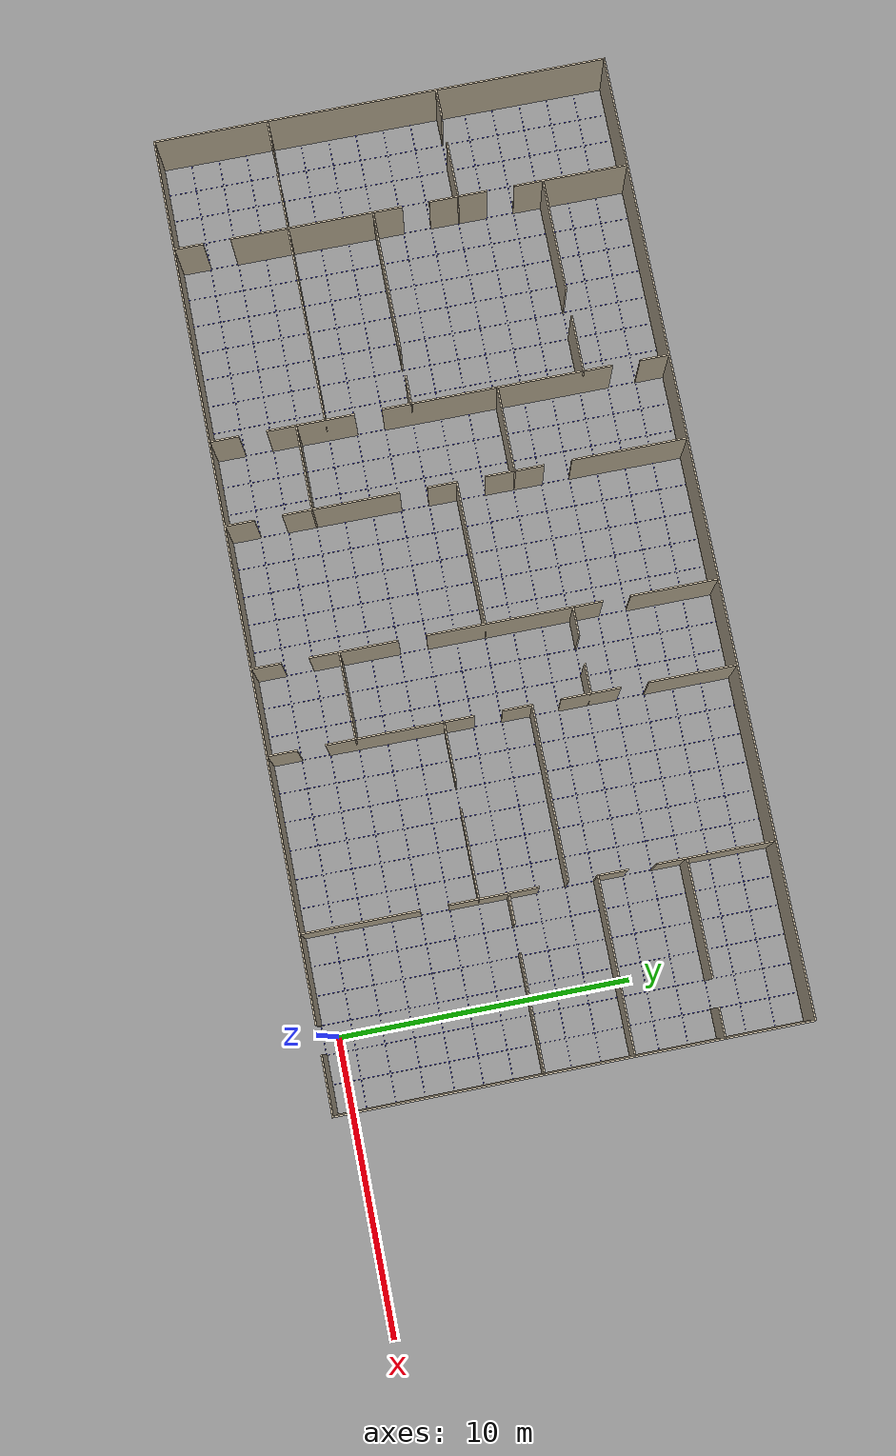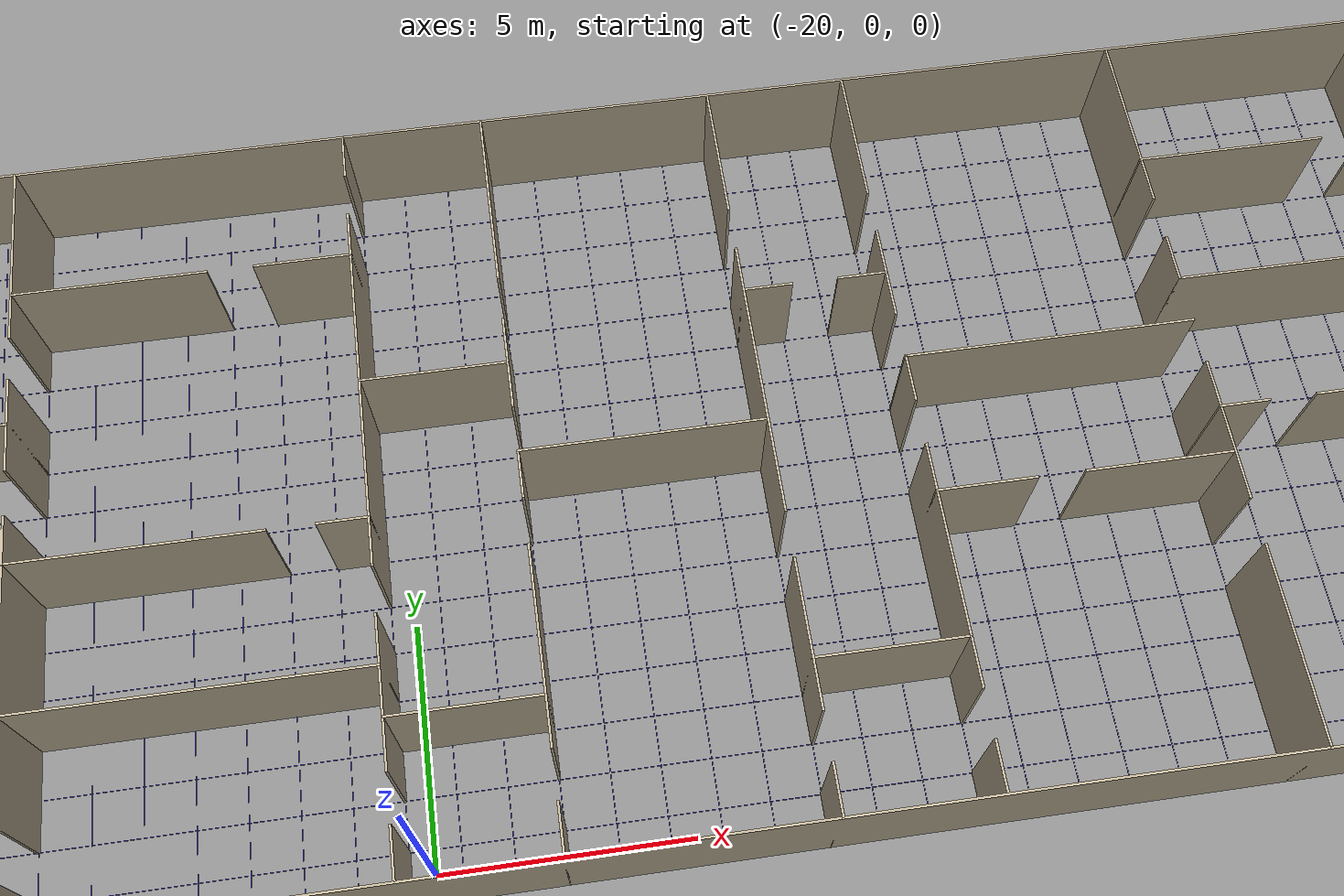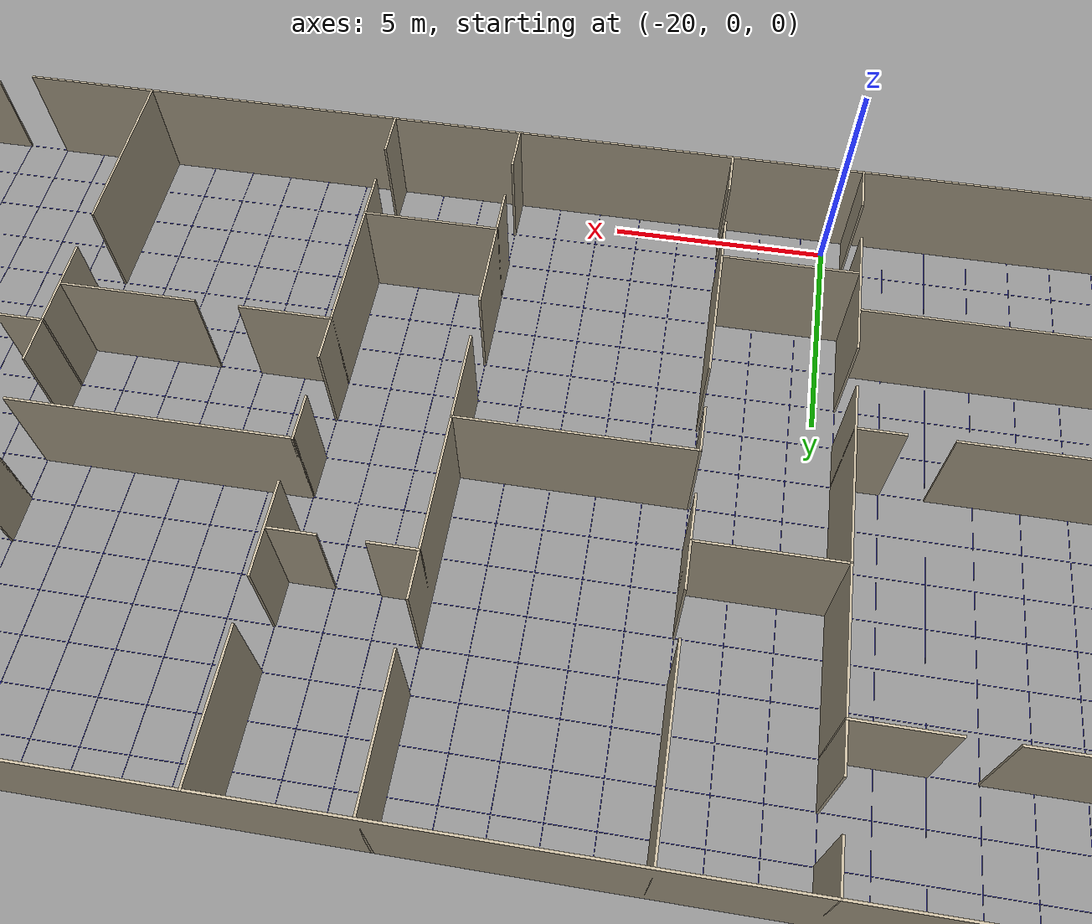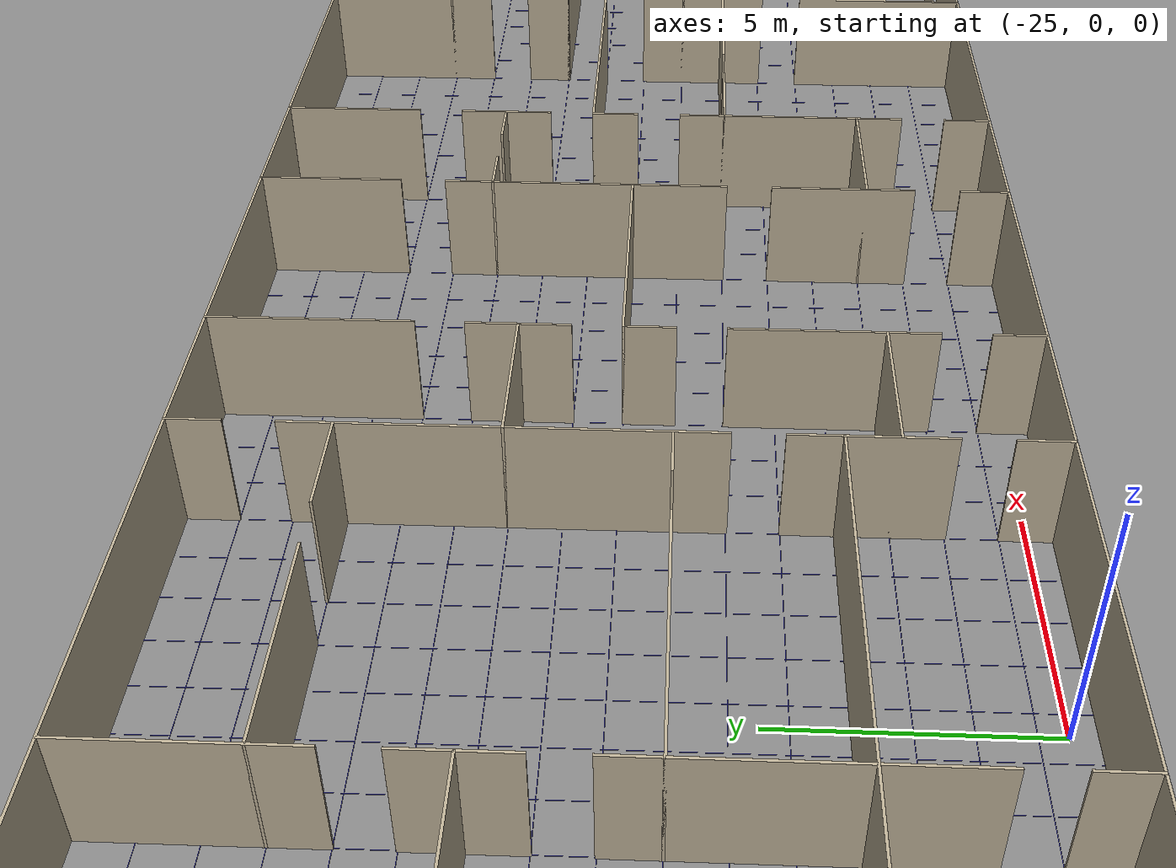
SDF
<sdf version="1.9">
 <world name="rooms_1">
  <physics name="1ms" type="ignore">
   <max_step_size>0.001</max_step_size>
   <real_time_factor>1.0</real_time_factor>
  </physics>
  <plugin filename="gz-sim-physics-system" name="gz::sim::systems::Physics"/>
  <plugin filename="gz-sim-sensors-system" name="gz::sim::systems::Sensors">
   <render_engine>ogre2</render_engine>
  </plugin>
  <plugin filename="gz-sim-user-commands-system" name="gz::sim::systems::UserCommands"/>
  <plugin filename="gz-sim-scene-broadcaster-system" name="gz::sim::systems::SceneBroadcaster"/>
  <plugin filename="gz-sim-imu-system" name="gz::sim::systems::Imu"/>
  <plugin filename="gz-sim-navsat-system" name="gz::sim::systems::NavSat"/>
  <scene><ambient>0.8 0.8 0.8</ambient><background>0.8 0.8 0.8</background></scene>
  <spherical_coordinates>
   <latitude_deg>-35.363262</latitude_deg>
   <longitude_deg>149.165237</longitude_deg>
   <elevation>584</elevation>
   <heading_deg>0</heading_deg>
   <surface_model>EARTH_WGS84</surface_model>
  </spherical_coordinates>
  <light type="directional" name="sun">
   <cast_shadows>false</cast_shadows>
   <pose>0 0 10 0 0 0</pose>
   <diffuse>0.9 0.9 0.9 1</diffuse>
   <direction>-0.3 0.2 -0.9</direction>
  </light>
  <model name="ground">
   <static>true</static>
   <link name="link">
    <collision name="c"><geometry><plane><normal>0 0 1</normal><size>78 78</size></plane></geometry></collision>
    <visual name="v">
     <geometry><plane><normal>0 0 1</normal><size>78 78</size></plane></geometry>
     <material><ambient>0.55 0.55 0.55 1</ambient><diffuse>0.55 0.55 0.55 1</diffuse></material>
    </visual>
   </link>
  </model>
  <model name="maze">
   <static>true</static>
   <link name="h0_0">
    <pose>-14.500 15.500 1.220 0 0 0</pose>
    <collision name="c"><geometry><box><size>34.05 0.05 2.44</size></box></geometry></collision>
    <visual name="v">
     <geometry><box><size>34.05 0.05 2.44</size></box></geometry>
     <material><ambient>0.75 0.7 0.6 1</ambient><diffuse>0.75 0.7 0.6 1</diffuse></material>
    </visual>
   </link>
   <link name="h3_4">
    <pose>-25.500 12.500 1.220 0 0 0</pose>
    <collision name="c"><geometry><box><size>4.05 0.05 2.44</size></box></geometry></collision>
    <visual name="v">
     <geometry><box><size>4.05 0.05 2.44</size></box></geometry>
     <material><ambient>0.75 0.7 0.6 1</ambient><diffuse>0.75 0.7 0.6 1</diffuse></material>
    </visual>
   </link>
   <link name="h3_9">
    <pose>-21.500 12.500 1.220 0 0 0</pose>
    <collision name="c"><geometry><box><size>2.05 0.05 2.44</size></box></geometry></collision>
    <visual name="v">
     <geometry><box><size>2.05 0.05 2.44</size></box></geometry>
     <material><ambient>0.75 0.7 0.6 1</ambient><diffuse>0.75 0.7 0.6 1</diffuse></material>
    </visual>
   </link>
   <link name="h3_28">
    <pose>-1.500 12.500 1.220 0 0 0</pose>
    <collision name="c"><geometry><box><size>4.05 0.05 2.44</size></box></geometry></collision>
    <visual name="v">
     <geometry><box><size>4.05 0.05 2.44</size></box></geometry>
     <material><ambient>0.75 0.7 0.6 1</ambient><diffuse>0.75 0.7 0.6 1</diffuse></material>
    </visual>
   </link>
   <link name="h3_33">
    <pose>2.000 12.500 1.220 0 0 0</pose>
    <collision name="c"><geometry><box><size>1.05 0.05 2.44</size></box></geometry></collision>
    <visual name="v">
     <geometry><box><size>1.05 0.05 2.44</size></box></geometry>
     <material><ambient>0.75 0.7 0.6 1</ambient><diffuse>0.75 0.7 0.6 1</diffuse></material>
    </visual>
   </link>
   <link name="h5_19">
    <pose>-12.000 10.500 1.220 0 0 0</pose>
    <collision name="c"><geometry><box><size>1.05 0.05 2.44</size></box></geometry></collision>
    <visual name="v">
     <geometry><box><size>1.05 0.05 2.44</size></box></geometry>
     <material><ambient>0.75 0.7 0.6 1</ambient><diffuse>0.75 0.7 0.6 1</diffuse></material>
    </visual>
   </link>
   <link name="h5_21">
    <pose>-10.000 10.500 1.220 0 0 0</pose>
    <collision name="c"><geometry><box><size>1.05 0.05 2.44</size></box></geometry></collision>
    <visual name="v">
     <geometry><box><size>1.05 0.05 2.44</size></box></geometry>
     <material><ambient>0.75 0.7 0.6 1</ambient><diffuse>0.75 0.7 0.6 1</diffuse></material>
    </visual>
   </link>
   <link name="h6_0">
    <pose>-31.000 9.500 1.220 0 0 0</pose>
    <collision name="c"><geometry><box><size>1.05 0.05 2.44</size></box></geometry></collision>
    <visual name="v">
     <geometry><box><size>1.05 0.05 2.44</size></box></geometry>
     <material><ambient>0.75 0.7 0.6 1</ambient><diffuse>0.75 0.7 0.6 1</diffuse></material>
    </visual>
   </link>
   <link name="h6_2">
    <pose>-28.500 9.500 1.220 0 0 0</pose>
    <collision name="c"><geometry><box><size>2.05 0.05 2.44</size></box></geometry></collision>
    <visual name="v">
     <geometry><box><size>2.05 0.05 2.44</size></box></geometry>
     <material><ambient>0.75 0.7 0.6 1</ambient><diffuse>0.75 0.7 0.6 1</diffuse></material>
    </visual>
   </link>
   <link name="h6_11">
    <pose>-19.000 9.500 1.220 0 0 0</pose>
    <collision name="c"><geometry><box><size>3.05 0.05 2.44</size></box></geometry></collision>
    <visual name="v">
     <geometry><box><size>3.05 0.05 2.44</size></box></geometry>
     <material><ambient>0.75 0.7 0.6 1</ambient><diffuse>0.75 0.7 0.6 1</diffuse></material>
    </visual>
   </link>
   <link name="h6_28">
    <pose>-0.500 9.500 1.220 0 0 0</pose>
    <collision name="c"><geometry><box><size>6.05 0.05 2.44</size></box></geometry></collision>
    <visual name="v">
     <geometry><box><size>6.05 0.05 2.44</size></box></geometry>
     <material><ambient>0.75 0.7 0.6 1</ambient><diffuse>0.75 0.7 0.6 1</diffuse></material>
    </visual>
   </link>
   <link name="h7_22">
    <pose>-6.500 8.500 1.220 0 0 0</pose>
    <collision name="c"><geometry><box><size>6.05 0.05 2.44</size></box></geometry></collision>
    <visual name="v">
     <geometry><box><size>6.05 0.05 2.44</size></box></geometry>
     <material><ambient>0.75 0.7 0.6 1</ambient><diffuse>0.75 0.7 0.6 1</diffuse></material>
    </visual>
   </link>
   <link name="h8_14">
    <pose>-15.000 7.500 1.220 0 0 0</pose>
    <collision name="c"><geometry><box><size>5.05 0.05 2.44</size></box></geometry></collision>
    <visual name="v">
     <geometry><box><size>5.05 0.05 2.44</size></box></geometry>
     <material><ambient>0.75 0.7 0.6 1</ambient><diffuse>0.75 0.7 0.6 1</diffuse></material>
    </visual>
   </link>
   <link name="h9_4">
    <pose>-25.000 6.500 1.220 0 0 0</pose>
    <collision name="c"><geometry><box><size>5.05 0.05 2.44</size></box></geometry></collision>
    <visual name="v">
     <geometry><box><size>5.05 0.05 2.44</size></box></geometry>
     <material><ambient>0.75 0.7 0.6 1</ambient><diffuse>0.75 0.7 0.6 1</diffuse></material>
    </visual>
   </link>
   <link name="h9_10">
    <pose>-21.000 6.500 1.220 0 0 0</pose>
    <collision name="c"><geometry><box><size>1.05 0.05 2.44</size></box></geometry></collision>
    <visual name="v">
     <geometry><box><size>1.05 0.05 2.44</size></box></geometry>
     <material><ambient>0.75 0.7 0.6 1</ambient><diffuse>0.75 0.7 0.6 1</diffuse></material>
    </visual>
   </link>
   <link name="h9_28">
    <pose>-3.000 6.500 1.220 0 0 0</pose>
    <collision name="c"><geometry><box><size>1.05 0.05 2.44</size></box></geometry></collision>
    <visual name="v">
     <geometry><box><size>1.05 0.05 2.44</size></box></geometry>
     <material><ambient>0.75 0.7 0.6 1</ambient><diffuse>0.75 0.7 0.6 1</diffuse></material>
    </visual>
   </link>
   <link name="h9_30">
    <pose>0.500 6.500 1.220 0 0 0</pose>
    <collision name="c"><geometry><box><size>4.05 0.05 2.44</size></box></geometry></collision>
    <visual name="v">
     <geometry><box><size>4.05 0.05 2.44</size></box></geometry>
     <material><ambient>0.75 0.7 0.6 1</ambient><diffuse>0.75 0.7 0.6 1</diffuse></material>
    </visual>
   </link>
   <link name="h10_22">
    <pose>-8.500 5.500 1.220 0 0 0</pose>
    <collision name="c"><geometry><box><size>2.05 0.05 2.44</size></box></geometry></collision>
    <visual name="v">
     <geometry><box><size>2.05 0.05 2.44</size></box></geometry>
     <material><ambient>0.75 0.7 0.6 1</ambient><diffuse>0.75 0.7 0.6 1</diffuse></material>
    </visual>
   </link>
   <link name="h10_25">
    <pose>-5.000 5.500 1.220 0 0 0</pose>
    <collision name="c"><geometry><box><size>3.05 0.05 2.44</size></box></geometry></collision>
    <visual name="v">
     <geometry><box><size>3.05 0.05 2.44</size></box></geometry>
     <material><ambient>0.75 0.7 0.6 1</ambient><diffuse>0.75 0.7 0.6 1</diffuse></material>
    </visual>
   </link>
   <link name="h12_0">
    <pose>-31.000 3.500 1.220 0 0 0</pose>
    <collision name="c"><geometry><box><size>1.05 0.05 2.44</size></box></geometry></collision>
    <visual name="v">
     <geometry><box><size>1.05 0.05 2.44</size></box></geometry>
     <material><ambient>0.75 0.7 0.6 1</ambient><diffuse>0.75 0.7 0.6 1</diffuse></material>
    </visual>
   </link>
   <link name="h12_2">
    <pose>-25.000 3.500 1.220 0 0 0</pose>
    <collision name="c"><geometry><box><size>9.05 0.05 2.44</size></box></geometry></collision>
    <visual name="v">
     <geometry><box><size>9.05 0.05 2.44</size></box></geometry>
     <material><ambient>0.75 0.7 0.6 1</ambient><diffuse>0.75 0.7 0.6 1</diffuse></material>
    </visual>
   </link>
   <link name="h13_11">
    <pose>-19.000 2.500 1.220 0 0 0</pose>
    <collision name="c"><geometry><box><size>3.05 0.05 2.44</size></box></geometry></collision>
    <visual name="v">
     <geometry><box><size>3.05 0.05 2.44</size></box></geometry>
     <material><ambient>0.75 0.7 0.6 1</ambient><diffuse>0.75 0.7 0.6 1</diffuse></material>
    </visual>
   </link>
   <link name="h13_19">
    <pose>-11.000 2.500 1.220 0 0 0</pose>
    <collision name="c"><geometry><box><size>3.05 0.05 2.44</size></box></geometry></collision>
    <visual name="v">
     <geometry><box><size>3.05 0.05 2.44</size></box></geometry>
     <material><ambient>0.75 0.7 0.6 1</ambient><diffuse>0.75 0.7 0.6 1</diffuse></material>
    </visual>
   </link>
   <link name="h16_0">
    <pose>-16.000 -0.500 1.220 0 0 0</pose>
    <collision name="c"><geometry><box><size>31.05 0.05 2.44</size></box></geometry></collision>
    <visual name="v">
     <geometry><box><size>31.05 0.05 2.44</size></box></geometry>
     <material><ambient>0.75 0.7 0.6 1</ambient><diffuse>0.75 0.7 0.6 1</diffuse></material>
    </visual>
   </link>
   <link name="h16_32">
    <pose>1.500 -0.500 1.220 0 0 0</pose>
    <collision name="c"><geometry><box><size>2.05 0.05 2.44</size></box></geometry></collision>
    <visual name="v">
     <geometry><box><size>2.05 0.05 2.44</size></box></geometry>
     <material><ambient>0.75 0.7 0.6 1</ambient><diffuse>0.75 0.7 0.6 1</diffuse></material>
    </visual>
   </link>
   <link name="v0_0">
    <pose>-31.500 7.500 1.220 0 0 0</pose>
    <collision name="c"><geometry><box><size>0.05 16.05 2.44</size></box></geometry></collision>
    <visual name="v">
     <geometry><box><size>0.05 16.05 2.44</size></box></geometry>
     <material><ambient>0.75 0.7 0.6 1</ambient><diffuse>0.75 0.7 0.6 1</diffuse></material>
    </visual>
   </link>
   <link name="v4_0">
    <pose>-27.500 13.500 1.220 0 0 0</pose>
    <collision name="c"><geometry><box><size>0.05 4.05 2.44</size></box></geometry></collision>
    <visual name="v">
     <geometry><box><size>0.05 4.05 2.44</size></box></geometry>
     <material><ambient>0.75 0.7 0.6 1</ambient><diffuse>0.75 0.7 0.6 1</diffuse></material>
    </visual>
   </link>
   <link name="v4_5">
    <pose>-27.500 9.500 1.220 0 0 0</pose>
    <collision name="c"><geometry><box><size>0.05 2.05 2.44</size></box></geometry></collision>
    <visual name="v">
     <geometry><box><size>0.05 2.05 2.44</size></box></geometry>
     <material><ambient>0.75 0.7 0.6 1</ambient><diffuse>0.75 0.7 0.6 1</diffuse></material>
    </visual>
   </link>
   <link name="v4_8">
    <pose>-27.500 4.500 1.220 0 0 0</pose>
    <collision name="c"><geometry><box><size>0.05 6.05 2.44</size></box></geometry></collision>
    <visual name="v">
     <geometry><box><size>0.05 6.05 2.44</size></box></geometry>
     <material><ambient>0.75 0.7 0.6 1</ambient><diffuse>0.75 0.7 0.6 1</diffuse></material>
    </visual>
   </link>
   <link name="v4_15">
    <pose>-27.500 0.000 1.220 0 0 0</pose>
    <collision name="c"><geometry><box><size>0.05 1.05 2.44</size></box></geometry></collision>
    <visual name="v">
     <geometry><box><size>0.05 1.05 2.44</size></box></geometry>
     <material><ambient>0.75 0.7 0.6 1</ambient><diffuse>0.75 0.7 0.6 1</diffuse></material>
    </visual>
   </link>
   <link name="v11_0">
    <pose>-20.500 15.000 1.220 0 0 0</pose>
    <collision name="c"><geometry><box><size>0.05 1.05 2.44</size></box></geometry></collision>
    <visual name="v">
     <geometry><box><size>0.05 1.05 2.44</size></box></geometry>
     <material><ambient>0.75 0.7 0.6 1</ambient><diffuse>0.75 0.7 0.6 1</diffuse></material>
    </visual>
   </link>
   <link name="v11_2">
    <pose>-20.500 9.500 1.220 0 0 0</pose>
    <collision name="c"><geometry><box><size>0.05 8.05 2.44</size></box></geometry></collision>
    <visual name="v">
     <geometry><box><size>0.05 8.05 2.44</size></box></geometry>
     <material><ambient>0.75 0.7 0.6 1</ambient><diffuse>0.75 0.7 0.6 1</diffuse></material>
    </visual>
   </link>
   <link name="v11_11">
    <pose>-20.500 3.000 1.220 0 0 0</pose>
    <collision name="c"><geometry><box><size>0.05 3.05 2.44</size></box></geometry></collision>
    <visual name="v">
     <geometry><box><size>0.05 3.05 2.44</size></box></geometry>
     <material><ambient>0.75 0.7 0.6 1</ambient><diffuse>0.75 0.7 0.6 1</diffuse></material>
    </visual>
   </link>
   <link name="v11_15">
    <pose>-20.500 0.000 1.220 0 0 0</pose>
    <collision name="c"><geometry><box><size>0.05 1.05 2.44</size></box></geometry></collision>
    <visual name="v">
     <geometry><box><size>0.05 1.05 2.44</size></box></geometry>
     <material><ambient>0.75 0.7 0.6 1</ambient><diffuse>0.75 0.7 0.6 1</diffuse></material>
    </visual>
   </link>
   <link name="v14_0">
    <pose>-17.500 13.500 1.220 0 0 0</pose>
    <collision name="c"><geometry><box><size>0.05 4.05 2.44</size></box></geometry></collision>
    <visual name="v">
     <geometry><box><size>0.05 4.05 2.44</size></box></geometry>
     <material><ambient>0.75 0.7 0.6 1</ambient><diffuse>0.75 0.7 0.6 1</diffuse></material>
    </visual>
   </link>
   <link name="v14_5">
    <pose>-17.500 9.500 1.220 0 0 0</pose>
    <collision name="c"><geometry><box><size>0.05 2.05 2.44</size></box></geometry></collision>
    <visual name="v">
     <geometry><box><size>0.05 2.05 2.44</size></box></geometry>
     <material><ambient>0.75 0.7 0.6 1</ambient><diffuse>0.75 0.7 0.6 1</diffuse></material>
    </visual>
   </link>
   <link name="v14_8">
    <pose>-17.500 7.000 1.220 0 0 0</pose>
    <collision name="c"><geometry><box><size>0.05 1.05 2.44</size></box></geometry></collision>
    <visual name="v">
     <geometry><box><size>0.05 1.05 2.44</size></box></geometry>
     <material><ambient>0.75 0.7 0.6 1</ambient><diffuse>0.75 0.7 0.6 1</diffuse></material>
    </visual>
   </link>
   <link name="v14_10">
    <pose>-17.500 3.500 1.220 0 0 0</pose>
    <collision name="c"><geometry><box><size>0.05 4.05 2.44</size></box></geometry></collision>
    <visual name="v">
     <geometry><box><size>0.05 4.05 2.44</size></box></geometry>
     <material><ambient>0.75 0.7 0.6 1</ambient><diffuse>0.75 0.7 0.6 1</diffuse></material>
    </visual>
   </link>
   <link name="v14_15">
    <pose>-17.500 0.000 1.220 0 0 0</pose>
    <collision name="c"><geometry><box><size>0.05 1.05 2.44</size></box></geometry></collision>
    <visual name="v">
     <geometry><box><size>0.05 1.05 2.44</size></box></geometry>
     <material><ambient>0.75 0.7 0.6 1</ambient><diffuse>0.75 0.7 0.6 1</diffuse></material>
    </visual>
   </link>
   <link name="v19_0">
    <pose>-12.500 14.000 1.220 0 0 0</pose>
    <collision name="c"><geometry><box><size>0.05 3.05 2.44</size></box></geometry></collision>
    <visual name="v">
     <geometry><box><size>0.05 3.05 2.44</size></box></geometry>
     <material><ambient>0.75 0.7 0.6 1</ambient><diffuse>0.75 0.7 0.6 1</diffuse></material>
    </visual>
   </link>
   <link name="v19_4">
    <pose>-12.500 8.500 1.220 0 0 0</pose>
    <collision name="c"><geometry><box><size>0.05 6.05 2.44</size></box></geometry></collision>
    <visual name="v">
     <geometry><box><size>0.05 6.05 2.44</size></box></geometry>
     <material><ambient>0.75 0.7 0.6 1</ambient><diffuse>0.75 0.7 0.6 1</diffuse></material>
    </visual>
   </link>
   <link name="v19_11">
    <pose>-12.500 3.000 1.220 0 0 0</pose>
    <collision name="c"><geometry><box><size>0.05 3.05 2.44</size></box></geometry></collision>
    <visual name="v">
     <geometry><box><size>0.05 3.05 2.44</size></box></geometry>
     <material><ambient>0.75 0.7 0.6 1</ambient><diffuse>0.75 0.7 0.6 1</diffuse></material>
    </visual>
   </link>
   <link name="v19_15">
    <pose>-12.500 0.000 1.220 0 0 0</pose>
    <collision name="c"><geometry><box><size>0.05 1.05 2.44</size></box></geometry></collision>
    <visual name="v">
     <geometry><box><size>0.05 1.05 2.44</size></box></geometry>
     <material><ambient>0.75 0.7 0.6 1</ambient><diffuse>0.75 0.7 0.6 1</diffuse></material>
    </visual>
   </link>
   <link name="v22_0">
    <pose>-9.500 14.000 1.220 0 0 0</pose>
    <collision name="c"><geometry><box><size>0.05 3.05 2.44</size></box></geometry></collision>
    <visual name="v">
     <geometry><box><size>0.05 3.05 2.44</size></box></geometry>
     <material><ambient>0.75 0.7 0.6 1</ambient><diffuse>0.75 0.7 0.6 1</diffuse></material>
    </visual>
   </link>
   <link name="v22_4">
    <pose>-9.500 10.500 1.220 0 0 0</pose>
    <collision name="c"><geometry><box><size>0.05 2.05 2.44</size></box></geometry></collision>
    <visual name="v">
     <geometry><box><size>0.05 2.05 2.44</size></box></geometry>
     <material><ambient>0.75 0.7 0.6 1</ambient><diffuse>0.75 0.7 0.6 1</diffuse></material>
    </visual>
   </link>
   <link name="v22_7">
    <pose>-9.500 8.000 1.220 0 0 0</pose>
    <collision name="c"><geometry><box><size>0.05 1.05 2.44</size></box></geometry></collision>
    <visual name="v">
     <geometry><box><size>0.05 1.05 2.44</size></box></geometry>
     <material><ambient>0.75 0.7 0.6 1</ambient><diffuse>0.75 0.7 0.6 1</diffuse></material>
    </visual>
   </link>
   <link name="v22_9">
    <pose>-9.500 4.000 1.220 0 0 0</pose>
    <collision name="c"><geometry><box><size>0.05 5.05 2.44</size></box></geometry></collision>
    <visual name="v">
     <geometry><box><size>0.05 5.05 2.44</size></box></geometry>
     <material><ambient>0.75 0.7 0.6 1</ambient><diffuse>0.75 0.7 0.6 1</diffuse></material>
    </visual>
   </link>
   <link name="v22_15">
    <pose>-9.500 0.000 1.220 0 0 0</pose>
    <collision name="c"><geometry><box><size>0.05 1.05 2.44</size></box></geometry></collision>
    <visual name="v">
     <geometry><box><size>0.05 1.05 2.44</size></box></geometry>
     <material><ambient>0.75 0.7 0.6 1</ambient><diffuse>0.75 0.7 0.6 1</diffuse></material>
    </visual>
   </link>
   <link name="v28_0">
    <pose>-3.500 13.500 1.220 0 0 0</pose>
    <collision name="c"><geometry><box><size>0.05 4.05 2.44</size></box></geometry></collision>
    <visual name="v">
     <geometry><box><size>0.05 4.05 2.44</size></box></geometry>
     <material><ambient>0.75 0.7 0.6 1</ambient><diffuse>0.75 0.7 0.6 1</diffuse></material>
    </visual>
   </link>
   <link name="v28_5">
    <pose>-3.500 10.000 1.220 0 0 0</pose>
    <collision name="c"><geometry><box><size>0.05 1.05 2.44</size></box></geometry></collision>
    <visual name="v">
     <geometry><box><size>0.05 1.05 2.44</size></box></geometry>
     <material><ambient>0.75 0.7 0.6 1</ambient><diffuse>0.75 0.7 0.6 1</diffuse></material>
    </visual>
   </link>
   <link name="v28_8">
    <pose>-3.500 6.000 1.220 0 0 0</pose>
    <collision name="c"><geometry><box><size>0.05 3.05 2.44</size></box></geometry></collision>
    <visual name="v">
     <geometry><box><size>0.05 3.05 2.44</size></box></geometry>
     <material><ambient>0.75 0.7 0.6 1</ambient><diffuse>0.75 0.7 0.6 1</diffuse></material>
    </visual>
   </link>
   <link name="v28_12">
    <pose>-3.500 1.500 1.220 0 0 0</pose>
    <collision name="c"><geometry><box><size>0.05 4.05 2.44</size></box></geometry></collision>
    <visual name="v">
     <geometry><box><size>0.05 4.05 2.44</size></box></geometry>
     <material><ambient>0.75 0.7 0.6 1</ambient><diffuse>0.75 0.7 0.6 1</diffuse></material>
    </visual>
   </link>
   <link name="v34_0">
    <pose>2.500 7.500 1.220 0 0 0</pose>
    <collision name="c"><geometry><box><size>0.05 16.05 2.44</size></box></geometry></collision>
    <visual name="v">
     <geometry><box><size>0.05 16.05 2.44</size></box></geometry>
     <material><ambient>0.75 0.7 0.6 1</ambient><diffuse>0.75 0.7 0.6 1</diffuse></material>
    </visual>
   </link>
   <link name="gh0">
    <pose>-14.500 15.500 0.001 0 0 0</pose>
    <visual name="v">
     <geometry><box><size>34.0 0.01 0.002</size></box></geometry>
     <material><ambient>0.2 0.2 0.8 1</ambient><diffuse>0.2 0.2 0.8 1</diffuse></material>
    </visual>
   </link>
   <link name="gh1">
    <pose>-14.500 14.500 0.001 0 0 0</pose>
    <visual name="v">
     <geometry><box><size>34.0 0.01 0.002</size></box></geometry>
     <material><ambient>0.2 0.2 0.8 1</ambient><diffuse>0.2 0.2 0.8 1</diffuse></material>
    </visual>
   </link>
   <link name="gh2">
    <pose>-14.500 13.500 0.001 0 0 0</pose>
    <visual name="v">
     <geometry><box><size>34.0 0.01 0.002</size></box></geometry>
     <material><ambient>0.2 0.2 0.8 1</ambient><diffuse>0.2 0.2 0.8 1</diffuse></material>
    </visual>
   </link>
   <link name="gh3">
    <pose>-14.500 12.500 0.001 0 0 0</pose>
    <visual name="v">
     <geometry><box><size>34.0 0.01 0.002</size></box></geometry>
     <material><ambient>0.2 0.2 0.8 1</ambient><diffuse>0.2 0.2 0.8 1</diffuse></material>
    </visual>
   </link>
   <link name="gh4">
    <pose>-14.500 11.500 0.001 0 0 0</pose>
    <visual name="v">
     <geometry><box><size>34.0 0.01 0.002</size></box></geometry>
     <material><ambient>0.2 0.2 0.8 1</ambient><diffuse>0.2 0.2 0.8 1</diffuse></material>
    </visual>
   </link>
   <link name="gh5">
    <pose>-14.500 10.500 0.001 0 0 0</pose>
    <visual name="v">
     <geometry><box><size>34.0 0.01 0.002</size></box></geometry>
     <material><ambient>0.2 0.2 0.8 1</ambient><diffuse>0.2 0.2 0.8 1</diffuse></material>
    </visual>
   </link>
   <link name="gh6">
    <pose>-14.500 9.500 0.001 0 0 0</pose>
    <visual name="v">
     <geometry><box><size>34.0 0.01 0.002</size></box></geometry>
     <material><ambient>0.2 0.2 0.8 1</ambient><diffuse>0.2 0.2 0.8 1</diffuse></material>
    </visual>
   </link>
   <link name="gh7">
    <pose>-14.500 8.500 0.001 0 0 0</pose>
    <visual name="v">
     <geometry><box><size>34.0 0.01 0.002</size></box></geometry>
     <material><ambient>0.2 0.2 0.8 1</ambient><diffuse>0.2 0.2 0.8 1</diffuse></material>
    </visual>
   </link>
   <link name="gh8">
    <pose>-14.500 7.500 0.001 0 0 0</pose>
    <visual name="v">
     <geometry><box><size>34.0 0.01 0.002</size></box></geometry>
     <material><ambient>0.2 0.2 0.8 1</ambient><diffuse>0.2 0.2 0.8 1</diffuse></material>
    </visual>
   </link>
   <link name="gh9">
    <pose>-14.500 6.500 0.001 0 0 0</pose>
    <visual name="v">
     <geometry><box><size>34.0 0.01 0.002</size></box></geometry>
     <material><ambient>0.2 0.2 0.8 1</ambient><diffuse>0.2 0.2 0.8 1</diffuse></material>
    </visual>
   </link>
   <link name="gh10">
    <pose>-14.500 5.500 0.001 0 0 0</pose>
    <visual name="v">
     <geometry><box><size>34.0 0.01 0.002</size></box></geometry>
     <material><ambient>0.2 0.2 0.8 1</ambient><diffuse>0.2 0.2 0.8 1</diffuse></material>
    </visual>
   </link>
   <link name="gh11">
    <pose>-14.500 4.500 0.001 0 0 0</pose>
    <visual name="v">
     <geometry><box><size>34.0 0.01 0.002</size></box></geometry>
     <material><ambient>0.2 0.2 0.8 1</ambient><diffuse>0.2 0.2 0.8 1</diffuse></material>
    </visual>
   </link>
   <link name="gh12">
    <pose>-14.500 3.500 0.001 0 0 0</pose>
    <visual name="v">
     <geometry><box><size>34.0 0.01 0.002</size></box></geometry>
     <material><ambient>0.2 0.2 0.8 1</ambient><diffuse>0.2 0.2 0.8 1</diffuse></material>
    </visual>
   </link>
   <link name="gh13">
    <pose>-14.500 2.500 0.001 0 0 0</pose>
    <visual name="v">
     <geometry><box><size>34.0 0.01 0.002</size></box></geometry>
     <material><ambient>0.2 0.2 0.8 1</ambient><diffuse>0.2 0.2 0.8 1</diffuse></material>
    </visual>
   </link>
   <link name="gh14">
    <pose>-14.500 1.500 0.001 0 0 0</pose>
    <visual name="v">
     <geometry><box><size>34.0 0.01 0.002</size></box></geometry>
     <material><ambient>0.2 0.2 0.8 1</ambient><diffuse>0.2 0.2 0.8 1</diffuse></material>
    </visual>
   </link>
   <link name="gh15">
    <pose>-14.500 0.500 0.001 0 0 0</pose>
    <visual name="v">
     <geometry><box><size>34.0 0.01 0.002</size></box></geometry>
     <material><ambient>0.2 0.2 0.8 1</ambient><diffuse>0.2 0.2 0.8 1</diffuse></material>
    </visual>
   </link>
   <link name="gh16">
    <pose>-14.500 -0.500 0.001 0 0 0</pose>
    <visual name="v">
     <geometry><box><size>34.0 0.01 0.002</size></box></geometry>
     <material><ambient>0.2 0.2 0.8 1</ambient><diffuse>0.2 0.2 0.8 1</diffuse></material>
    </visual>
   </link>
   <link name="gv0">
    <pose>-31.500 7.500 0.001 0 0 0</pose>
    <visual name="v">
     <geometry><box><size>0.01 16.0 0.002</size></box></geometry>
     <material><ambient>0.2 0.2 0.8 1</ambient><diffuse>0.2 0.2 0.8 1</diffuse></material>
    </visual>
   </link>
   <link name="gv1">
    <pose>-30.500 7.500 0.001 0 0 0</pose>
    <visual name="v">
     <geometry><box><size>0.01 16.0 0.002</size></box></geometry>
     <material><ambient>0.2 0.2 0.8 1</ambient><diffuse>0.2 0.2 0.8 1</diffuse></material>
    </visual>
   </link>
   <link name="gv2">
    <pose>-29.500 7.500 0.001 0 0 0</pose>
    <visual name="v">
     <geometry><box><size>0.01 16.0 0.002</size></box></geometry>
     <material><ambient>0.2 0.2 0.8 1</ambient><diffuse>0.2 0.2 0.8 1</diffuse></material>
    </visual>
   </link>
   <link name="gv3">
    <pose>-28.500 7.500 0.001 0 0 0</pose>
    <visual name="v">
     <geometry><box><size>0.01 16.0 0.002</size></box></geometry>
     <material><ambient>0.2 0.2 0.8 1</ambient><diffuse>0.2 0.2 0.8 1</diffuse></material>
    </visual>
   </link>
   <link name="gv4">
    <pose>-27.500 7.500 0.001 0 0 0</pose>
    <visual name="v">
     <geometry><box><size>0.01 16.0 0.002</size></box></geometry>
     <material><ambient>0.2 0.2 0.8 1</ambient><diffuse>0.2 0.2 0.8 1</diffuse></material>
    </visual>
   </link>
   <link name="gv5">
    <pose>-26.500 7.500 0.001 0 0 0</pose>
    <visual name="v">
     <geometry><box><size>0.01 16.0 0.002</size></box></geometry>
     <material><ambient>0.2 0.2 0.8 1</ambient><diffuse>0.2 0.2 0.8 1</diffuse></material>
    </visual>
   </link>
   <link name="gv6">
    <pose>-25.500 7.500 0.001 0 0 0</pose>
    <visual name="v">
     <geometry><box><size>0.01 16.0 0.002</size></box></geometry>
     <material><ambient>0.2 0.2 0.8 1</ambient><diffuse>0.2 0.2 0.8 1</diffuse></material>
    </visual>
   </link>
   <link name="gv7">
    <pose>-24.500 7.500 0.001 0 0 0</pose>
    <visual name="v">
     <geometry><box><size>0.01 16.0 0.002</size></box></geometry>
     <material><ambient>0.2 0.2 0.8 1</ambient><diffuse>0.2 0.2 0.8 1</diffuse></material>
    </visual>
   </link>
   <link name="gv8">
    <pose>-23.500 7.500 0.001 0 0 0</pose>
    <visual name="v">
     <geometry><box><size>0.01 16.0 0.002</size></box></geometry>
     <material><ambient>0.2 0.2 0.8 1</ambient><diffuse>0.2 0.2 0.8 1</diffuse></material>
    </visual>
   </link>
   <link name="gv9">
    <pose>-22.500 7.500 0.001 0 0 0</pose>
    <visual name="v">
     <geometry><box><size>0.01 16.0 0.002</size></box></geometry>
     <material><ambient>0.2 0.2 0.8 1</ambient><diffuse>0.2 0.2 0.8 1</diffuse></material>
    </visual>
   </link>
   <link name="gv10">
    <pose>-21.500 7.500 0.001 0 0 0</pose>
    <visual name="v">
     <geometry><box><size>0.01 16.0 0.002</size></box></geometry>
     <material><ambient>0.2 0.2 0.8 1</ambient><diffuse>0.2 0.2 0.8 1</diffuse></material>
    </visual>
   </link>
   <link name="gv11">
    <pose>-20.500 7.500 0.001 0 0 0</pose>
    <visual name="v">
     <geometry><box><size>0.01 16.0 0.002</size></box></geometry>
     <material><ambient>0.2 0.2 0.8 1</ambient><diffuse>0.2 0.2 0.8 1</diffuse></material>
    </visual>
   </link>
   <link name="gv12">
    <pose>-19.500 7.500 0.001 0 0 0</pose>
    <visual name="v">
     <geometry><box><size>0.01 16.0 0.002</size></box></geometry>
     <material><ambient>0.2 0.2 0.8 1</ambient><diffuse>0.2 0.2 0.8 1</diffuse></material>
    </visual>
   </link>
   <link name="gv13">
    <pose>-18.500 7.500 0.001 0 0 0</pose>
    <visual name="v">
     <geometry><box><size>0.01 16.0 0.002</size></box></geometry>
     <material><ambient>0.2 0.2 0.8 1</ambient><diffuse>0.2 0.2 0.8 1</diffuse></material>
    </visual>
   </link>
   <link name="gv14">
    <pose>-17.500 7.500 0.001 0 0 0</pose>
    <visual name="v">
     <geometry><box><size>0.01 16.0 0.002</size></box></geometry>
     <material><ambient>0.2 0.2 0.8 1</ambient><diffuse>0.2 0.2 0.8 1</diffuse></material>
    </visual>
   </link>
   <link name="gv15">
    <pose>-16.500 7.500 0.001 0 0 0</pose>
    <visual name="v">
     <geometry><box><size>0.01 16.0 0.002</size></box></geometry>
     <material><ambient>0.2 0.2 0.8 1</ambient><diffuse>0.2 0.2 0.8 1</diffuse></material>
    </visual>
   </link>
   <link name="gv16">
    <pose>-15.500 7.500 0.001 0 0 0</pose>
    <visual name="v">
     <geometry><box><size>0.01 16.0 0.002</size></box></geometry>
     <material><ambient>0.2 0.2 0.8 1</ambient><diffuse>0.2 0.2 0.8 1</diffuse></material>
    </visual>
   </link>
   <link name="gv17">
    <pose>-14.500 7.500 0.001 0 0 0</pose>
    <visual name="v">
     <geometry><box><size>0.01 16.0 0.002</size></box></geometry>
     <material><ambient>0.2 0.2 0.8 1</ambient><diffuse>0.2 0.2 0.8 1</diffuse></material>
    </visual>
   </link>
   <link name="gv18">
    <pose>-13.500 7.500 0.001 0 0 0</pose>
    <visual name="v">
     <geometry><box><size>0.01 16.0 0.002</size></box></geometry>
     <material><ambient>0.2 0.2 0.8 1</ambient><diffuse>0.2 0.2 0.8 1</diffuse></material>
    </visual>
   </link>
   <link name="gv19">
    <pose>-12.500 7.500 0.001 0 0 0</pose>
    <visual name="v">
     <geometry><box><size>0.01 16.0 0.002</size></box></geometry>
     <material><ambient>0.2 0.2 0.8 1</ambient><diffuse>0.2 0.2 0.8 1</diffuse></material>
    </visual>
   </link>
   <link name="gv20">
    <pose>-11.500 7.500 0.001 0 0 0</pose>
    <visual name="v">
     <geometry><box><size>0.01 16.0 0.002</size></box></geometry>
     <material><ambient>0.2 0.2 0.8 1</ambient><diffuse>0.2 0.2 0.8 1</diffuse></material>
    </visual>
   </link>
   <link name="gv21">
    <pose>-10.500 7.500 0.001 0 0 0</pose>
    <visual name="v">
     <geometry><box><size>0.01 16.0 0.002</size></box></geometry>
     <material><ambient>0.2 0.2 0.8 1</ambient><diffuse>0.2 0.2 0.8 1</diffuse></material>
    </visual>
   </link>
   <link name="gv22">
    <pose>-9.500 7.500 0.001 0 0 0</pose>
    <visual name="v">
     <geometry><box><size>0.01 16.0 0.002</size></box></geometry>
     <material><ambient>0.2 0.2 0.8 1</ambient><diffuse>0.2 0.2 0.8 1</diffuse></material>
    </visual>
   </link>
   <link name="gv23">
    <pose>-8.500 7.500 0.001 0 0 0</pose>
    <visual name="v">
     <geometry><box><size>0.01 16.0 0.002</size></box></geometry>
     <material><ambient>0.2 0.2 0.8 1</ambient><diffuse>0.2 0.2 0.8 1</diffuse></material>
    </visual>
   </link>
   <link name="gv24">
    <pose>-7.500 7.500 0.001 0 0 0</pose>
    <visual name="v">
     <geometry><box><size>0.01 16.0 0.002</size></box></geometry>
     <material><ambient>0.2 0.2 0.8 1</ambient><diffuse>0.2 0.2 0.8 1</diffuse></material>
    </visual>
   </link>
   <link name="gv25">
    <pose>-6.500 7.500 0.001 0 0 0</pose>
    <visual name="v">
     <geometry><box><size>0.01 16.0 0.002</size></box></geometry>
     <material><ambient>0.2 0.2 0.8 1</ambient><diffuse>0.2 0.2 0.8 1</diffuse></material>
    </visual>
   </link>
   <link name="gv26">
    <pose>-5.500 7.500 0.001 0 0 0</pose>
    <visual name="v">
     <geometry><box><size>0.01 16.0 0.002</size></box></geometry>
     <material><ambient>0.2 0.2 0.8 1</ambient><diffuse>0.2 0.2 0.8 1</diffuse></material>
    </visual>
   </link>
   <link name="gv27">
    <pose>-4.500 7.500 0.001 0 0 0</pose>
    <visual name="v">
     <geometry><box><size>0.01 16.0 0.002</size></box></geometry>
     <material><ambient>0.2 0.2 0.8 1</ambient><diffuse>0.2 0.2 0.8 1</diffuse></material>
    </visual>
   </link>
   <link name="gv28">
    <pose>-3.500 7.500 0.001 0 0 0</pose>
    <visual name="v">
     <geometry><box><size>0.01 16.0 0.002</size></box></geometry>
     <material><ambient>0.2 0.2 0.8 1</ambient><diffuse>0.2 0.2 0.8 1</diffuse></material>
    </visual>
   </link>
   <link name="gv29">
    <pose>-2.500 7.500 0.001 0 0 0</pose>
    <visual name="v">
     <geometry><box><size>0.01 16.0 0.002</size></box></geometry>
     <material><ambient>0.2 0.2 0.8 1</ambient><diffuse>0.2 0.2 0.8 1</diffuse></material>
    </visual>
   </link>
   <link name="gv30">
    <pose>-1.500 7.500 0.001 0 0 0</pose>
    <visual name="v">
     <geometry><box><size>0.01 16.0 0.002</size></box></geometry>
     <material><ambient>0.2 0.2 0.8 1</ambient><diffuse>0.2 0.2 0.8 1</diffuse></material>
    </visual>
   </link>
   <link name="gv31">
    <pose>-0.500 7.500 0.001 0 0 0</pose>
    <visual name="v">
     <geometry><box><size>0.01 16.0 0.002</size></box></geometry>
     <material><ambient>0.2 0.2 0.8 1</ambient><diffuse>0.2 0.2 0.8 1</diffuse></material>
    </visual>
   </link>
   <link name="gv32">
    <pose>0.500 7.500 0.001 0 0 0</pose>
    <visual name="v">
     <geometry><box><size>0.01 16.0 0.002</size></box></geometry>
     <material><ambient>0.2 0.2 0.8 1</ambient><diffuse>0.2 0.2 0.8 1</diffuse></material>
    </visual>
   </link>
   <link name="gv33">
    <pose>1.500 7.500 0.001 0 0 0</pose>
    <visual name="v">
     <geometry><box><size>0.01 16.0 0.002</size></box></geometry>
     <material><ambient>0.2 0.2 0.8 1</ambient><diffuse>0.2 0.2 0.8 1</diffuse></material>
    </visual>
   </link>
   <link name="gv34">
    <pose>2.500 7.500 0.001 0 0 0</pose>
    <visual name="v">
     <geometry><box><size>0.01 16.0 0.002</size></box></geometry>
     <material><ambient>0.2 0.2 0.8 1</ambient><diffuse>0.2 0.2 0.8 1</diffuse></material>
    </visual>
   </link>
  </model>
 </world>
</sdf>
